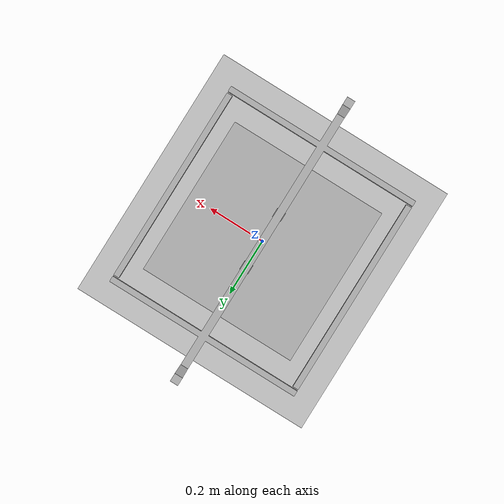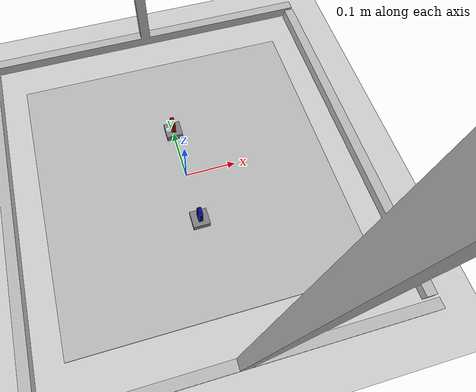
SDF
<?xml version="1.0" ?>
<sdf version="1.5">
  <world name="default">
    <include>
      <uri>model://sun</uri>
    </include>
    <include>
      <uri>model://ground_plane</uri>
    </include>
    <include>
      <uri>model://toio_mat</uri>
      <static>true</static>
    </include>
    <include>
      <uri>model://toio_frame</uri>
      <static>true</static>
    </include>

    <include>
      <uri>model://toio_cube_doll1</uri>
      <pose>0 0.1 0.004 0 0 0</pose>
    </include>

    <include>
      <uri>model://toio_cube_doll2</uri>
      <pose>0 -0.1 0.004 0 0 0</pose>
    </include>

    <physics name='default_physics' default='0' type='ode'>
      <max_step_size>0.005</max_step_size>
      <real_time_factor>1</real_time_factor>
      <real_time_update_rate>200</real_time_update_rate>
    </physics>
  </world>
</sdf>

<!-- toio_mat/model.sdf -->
<sdf version="1.4">
<model name="toio_mat">
  <pose>0 0 0.002 0 0 0</pose>
    <link name="link">
      <inertial>
        <mass>1.0</mass>
        <inertia>
          <ixx>0.083</ixx>
          <ixy>0.0</ixy>
          <ixz>0.0</ixz>
          <iyy>0.083</iyy>
          <iyz>0.0</iyz>
          <izz>0.083</izz>
        </inertia>
      </inertial>
      <collision name="collision">
        <geometry>
          <box>
            <size>0.56 0.56 0.004</size>
          </box>
        </geometry>
      </collision>
      <visual name="visual">
        <geometry>
          <box>
            <size>0.56 0.56 0.004</size>
          </box>
        </geometry>
        <material>
          <script>
            <uri>model://toio_mat/materials/toio_texture.material</uri>
            <name>ToioTexture</name>
          </script>
        </material>
      </visual>
    </link>
  </model>
</sdf>

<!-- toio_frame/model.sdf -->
<sdf version="1.4">
<model name="toio_mat">
  <pose>0 0 0.002 0 0 0</pose>
    <link name="link">
      <inertial>
        <mass>1.0</mass>
        <inertia>
          <ixx>0.083</ixx>
          <ixy>0.0</ixy>
          <ixz>0.0</ixz>
          <iyy>0.083</iyy>
          <iyz>0.0</iyz>
          <izz>0.083</izz>
        </inertia>
      </inertial>
      <collision name="collision">
        <geometry>
          <mesh>
            <uri>model://toio_frame/mesh/toio_frame.stl</uri>
          </mesh>
        </geometry>
      </collision>
      <visual name="visual">
        <geometry>
          <mesh>
            <uri>model://toio_frame/mesh/toio_frame.stl</uri>
          </mesh>
        </geometry>
        <material>
          <script>
            <uri>model://toio_mat/materials/toio_texture.material</uri>
            <name>ToioTexture</name>
          </script>
        </material>
      </visual>
    </link>
  </model>
</sdf>

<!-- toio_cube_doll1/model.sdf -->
<sdf version="1.4">
<model name="toio_cube_doll1">
  <pose>0 0 0.013 0 0 0</pose>
    <link name="link">
      <inertial>
        <mass>0.05</mass>
        <inertia>
          <ixx>0.0083</ixx>
          <ixy>0.0</ixy>
          <ixz>0.0</ixz>
          <iyy>0.0083</iyy>
          <iyz>0.0</iyz>
          <izz>0.0083</izz>
        </inertia>
      </inertial>
      <collision name="collision">
        <geometry>
          <box>
            <size>0.032 0.032 0.026</size>
          </box>
        </geometry>
      </collision>
      <visual name="visual">
        <geometry>
          <box>
            <size>0.032 0.032 0.026</size>
          </box>
        </geometry>
        <material>
          <ambient>0.8 0.8 0.8 1</ambient>
          <diffuse>0.5 0.5 0.5 1</diffuse>
          <specular>0 0 0 1</specular>
          <emissive>0.3 0.3 0.3 1</emissive>
        </material>
      </visual>
      <visual name="doll">
        <pose>0 0 0.023 0 0 0</pose>
        <geometry>
          <box>
            <size>0.008 0.016 0.040</size>
          </box>
        </geometry>
        <material>
          <ambient>0.8 0 0 1</ambient>
          <diffuse>0.5 0 0 1</diffuse>
          <specular>0 0 0 1</specular>
          <emissive>0.3 0 0 1</emissive>
        </material>
      </visual>
    </link>

    <plugin name="object_controller" filename="libgazebo_ros_planar_move.so">
      <commandTopic>toio1/cmd_vel</commandTopic>
      <odometryTopic>toio1/wheel_odom</odometryTopic>
      <odometryFrame>toio1/wheel_odom</odometryFrame>
      <odometryRate>5.0</odometryRate>
      <robotBaseFrame>toio1/base_link</robotBaseFrame>
    </plugin>

    <plugin name="object_controller" filename="libgazebo_ros_p3d.so">
      <robotNamespace></robotNamespace>
      <bodyName>link</bodyName>
      <topicName>toio1/odom</topicName>
      <frameName>world</frameName>
      <updateRate>5.0</updateRate>
    </plugin>

  </model>
</sdf>

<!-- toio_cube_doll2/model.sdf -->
<sdf version="1.4">
<model name="toio_cube_doll2">
  <pose>0 0 0.013 0 0 0</pose>
    <link name="link">
      <inertial>
        <mass>0.05</mass>
        <inertia>
          <ixx>0.0083</ixx>
          <ixy>0.0</ixy>
          <ixz>0.0</ixz>
          <iyy>0.0083</iyy>
          <iyz>0.0</iyz>
          <izz>0.0083</izz>
        </inertia>
      </inertial>
      <collision name="collision">
        <geometry>
          <box>
            <size>0.032 0.032 0.026</size>
          </box>
        </geometry>
      </collision>
      <visual name="visual">
        <geometry>
          <box>
            <size>0.032 0.032 0.026</size>
          </box>
        </geometry>
        <material>
          <ambient>0.8 0.8 0.8 1</ambient>
          <diffuse>0.5 0.5 0.5 1</diffuse>
          <specular>0 0 0 1</specular>
          <emissive>0.3 0.3 0.3 1</emissive>
        </material>
      </visual>
      <visual name="doll">
        <pose>0 0 0.023 0 0 0</pose>
        <geometry>
          <box>
            <size>0.008 0.016 0.040</size>
          </box>
        </geometry>
        <material>
          <ambient>0 0 0.8 1</ambient>
          <diffuse>0 0 0.5 1</diffuse>
          <specular>0 0 0 1</specular>
          <emissive>0 0 0.3 1</emissive>
        </material>
      </visual>
    </link>

    <plugin name="object_controller" filename="libgazebo_ros_planar_move.so">
      <commandTopic>toio2/cmd_vel</commandTopic>
      <odometryTopic>toio2/wheel_odom</odometryTopic>
      <odometryFrame>toio2/wheel_odom</odometryFrame>
      <odometryRate>5.0</odometryRate>
      <robotBaseFrame>toio2/base_link</robotBaseFrame>
    </plugin>

    <plugin name="object_controller" filename="libgazebo_ros_p3d.so">
      <robotNamespace></robotNamespace>
      <bodyName>link</bodyName>
      <topicName>toio2/odom</topicName>
      <frameName>world</frameName>
      <updateRate>5.0</updateRate>
    </plugin>

  </model>
</sdf>
